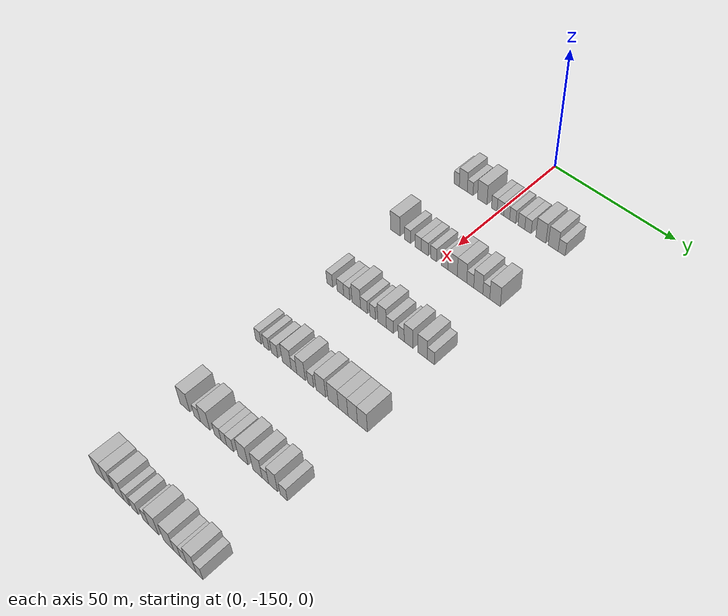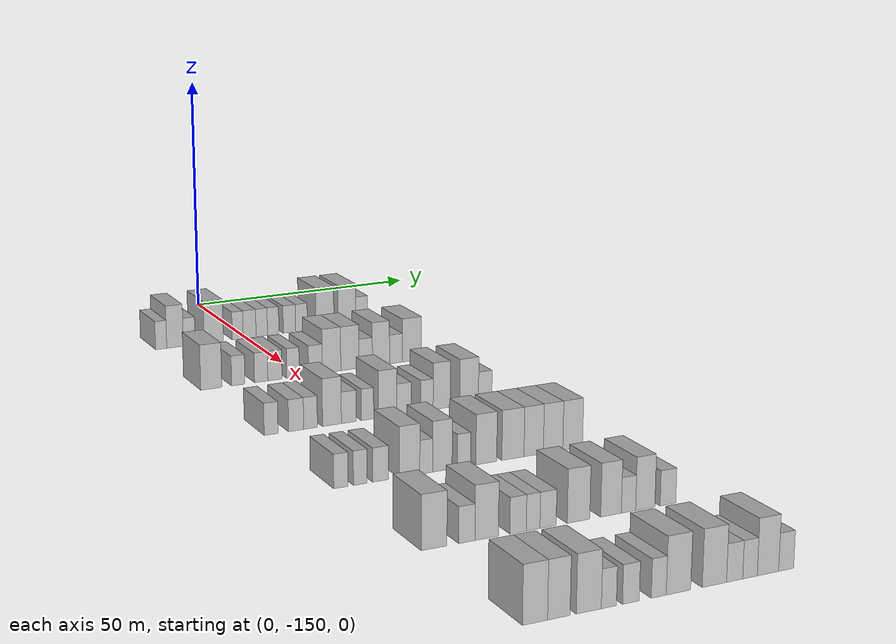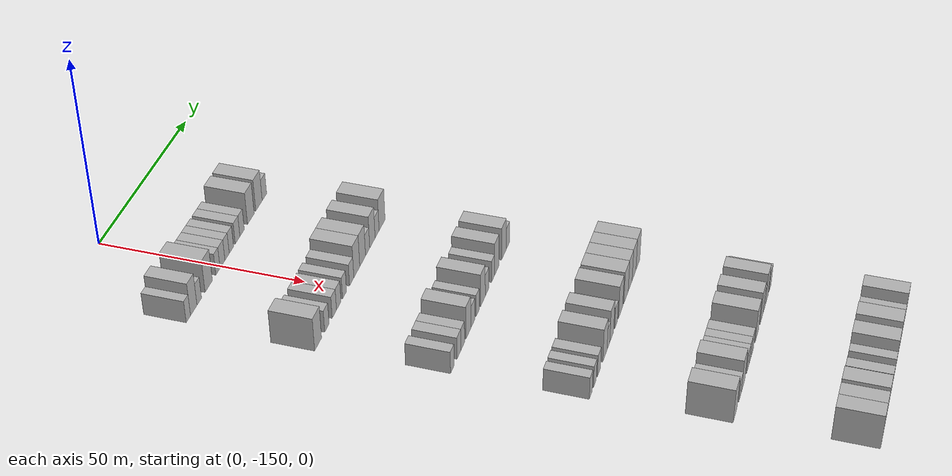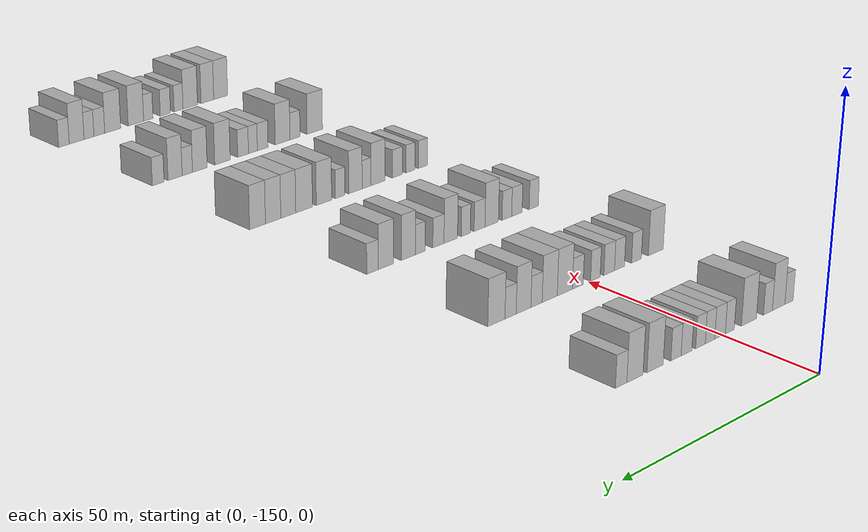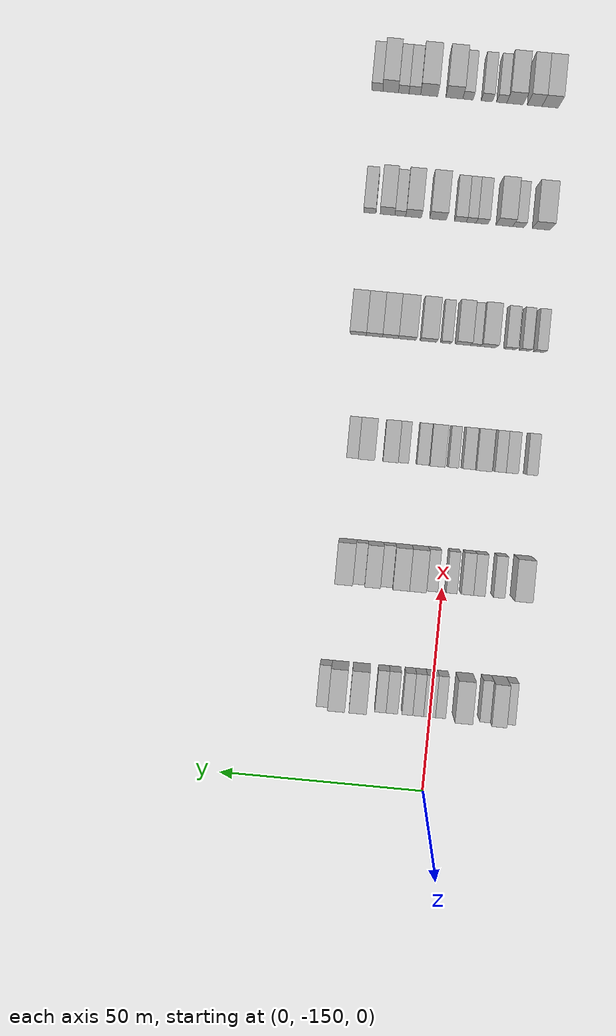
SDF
<sdf version="1.6">
 <world name="default">
  <model name="building_68">
   <static>1</static>
   <pose>25.0000 -168.8306 0 0.000000 0.000000 0.000000</pose>
   <link name="link">
    <pose>0 0 3.00 0 0 0</pose>
    <collision name="collision"><geometry><box><size>10.0000 2.4051 6.0000</size></box></geometry></collision>
    <visual name="visual">
     <cast_shadows>0</cast_shadows>
     <geometry><box><size>10.0000 2.4051 6.0000</size></box></geometry>
     <material>
      <script>
       <uri>model://HANNAS_wall/materials/scripts</uri>
       <uri>model://HANNAS_wall/materials/textures</uri>
       <name>vrc/HANNAS_wall</name>
      </script>
     </material>
    </visual>
   </link>
  </model>
  <model name="building_69">
   <static>1</static>
   <pose>25.0000 -165.8208 0 0.000000 0.000000 0.000000</pose>
   <link name="link">
    <pose>0 0 4.50 0 0 0</pose>
    <collision name="collision"><geometry><box><size>10.0000 3.6145 9.0000</size></box></geometry></collision>
    <visual name="visual">
     <cast_shadows>0</cast_shadows>
     <geometry><box><size>10.0000 3.6145 9.0000</size></box></geometry>
     <material>
      <script>
       <uri>model://HANNAS_wall/materials/scripts</uri>
       <uri>model://HANNAS_wall/materials/textures</uri>
       <name>vrc/HANNAS_wall</name>
      </script>
     </material>
    </visual>
   </link>
  </model>
  <model name="building_70">
   <static>1</static>
   <pose>25.0000 -162.7382 0 0.000000 0.000000 0.000000</pose>
   <link name="link">
    <pose>0 0 3.00 0 0 0</pose>
    <collision name="collision"><geometry><box><size>10.0000 2.5508 6.0000</size></box></geometry></collision>
    <visual name="visual">
     <cast_shadows>0</cast_shadows>
     <geometry><box><size>10.0000 2.5508 6.0000</size></box></geometry>
     <material>
      <script>
       <uri>model://HANNAS_wall/materials/scripts</uri>
       <uri>model://HANNAS_wall/materials/textures</uri>
       <name>vrc/HANNAS_wall</name>
      </script>
     </material>
    </visual>
   </link>
  </model>
  <model name="building_71">
   <static>1</static>
   <pose>25.0000 -157.3535 0 0.000000 0.000000 0.000000</pose>
   <link name="link">
    <pose>0 0 4.50 0 0 0</pose>
    <collision name="collision"><geometry><box><size>10.0000 4.2186 9.0000</size></box></geometry></collision>
    <visual name="visual">
     <cast_shadows>0</cast_shadows>
     <geometry><box><size>10.0000 4.2186 9.0000</size></box></geometry>
     <material>
      <script>
       <uri>model://HANNAS_wall/materials/scripts</uri>
       <uri>model://HANNAS_wall/materials/textures</uri>
       <name>vrc/HANNAS_wall</name>
      </script>
     </material>
    </visual>
   </link>
  </model>
  <model name="building_72">
   <static>1</static>
   <pose>25.0000 -152.0124 0 0.000000 0.000000 0.000000</pose>
   <link name="link">
    <pose>0 0 3.00 0 0 0</pose>
    <collision name="collision"><geometry><box><size>10.0000 2.4635 6.0000</size></box></geometry></collision>
    <visual name="visual">
     <cast_shadows>0</cast_shadows>
     <geometry><box><size>10.0000 2.4635 6.0000</size></box></geometry>
     <material>
      <script>
       <uri>model://HANNAS_wall/materials/scripts</uri>
       <uri>model://HANNAS_wall/materials/textures</uri>
       <name>vrc/HANNAS_wall</name>
      </script>
     </material>
    </visual>
   </link>
  </model>
  <model name="building_73">
   <static>1</static>
   <pose>25.0000 -149.3397 0 0.000000 0.000000 0.000000</pose>
   <link name="link">
    <pose>0 0 3.00 0 0 0</pose>
    <collision name="collision"><geometry><box><size>10.0000 2.8819 6.0000</size></box></geometry></collision>
    <visual name="visual">
     <cast_shadows>0</cast_shadows>
     <geometry><box><size>10.0000 2.8819 6.0000</size></box></geometry>
     <material>
      <script>
       <uri>model://HANNAS_wall/materials/scripts</uri>
       <uri>model://HANNAS_wall/materials/textures</uri>
       <name>vrc/HANNAS_wall</name>
      </script>
     </material>
    </visual>
   </link>
  </model>
  <model name="building_74">
   <static>1</static>
   <pose>25.0000 -146.6080 0 0.000000 0.000000 0.000000</pose>
   <link name="link">
    <pose>0 0 3.00 0 0 0</pose>
    <collision name="collision"><geometry><box><size>10.0000 2.5815 6.0000</size></box></geometry></collision>
    <visual name="visual">
     <cast_shadows>0</cast_shadows>
     <geometry><box><size>10.0000 2.5815 6.0000</size></box></geometry>
     <material>
      <script>
       <uri>model://HANNAS_wall/materials/scripts</uri>
       <uri>model://HANNAS_wall/materials/textures</uri>
       <name>vrc/HANNAS_wall</name>
      </script>
     </material>
    </visual>
   </link>
  </model>
  <model name="building_75">
   <static>1</static>
   <pose>25.0000 -144.0182 0 0.000000 0.000000 0.000000</pose>
   <link name="link">
    <pose>0 0 3.00 0 0 0</pose>
    <collision name="collision"><geometry><box><size>10.0000 2.5981 6.0000</size></box></geometry></collision>
    <visual name="visual">
     <cast_shadows>0</cast_shadows>
     <geometry><box><size>10.0000 2.5981 6.0000</size></box></geometry>
     <material>
      <script>
       <uri>model://HANNAS_wall/materials/scripts</uri>
       <uri>model://HANNAS_wall/materials/textures</uri>
       <name>vrc/HANNAS_wall</name>
      </script>
     </material>
    </visual>
   </link>
  </model>
  <model name="building_76">
   <static>1</static>
   <pose>25.0000 -140.2978 0 0.000000 0.000000 0.000000</pose>
   <link name="link">
    <pose>0 0 3.00 0 0 0</pose>
    <collision name="collision"><geometry><box><size>10.0000 2.8427 6.0000</size></box></geometry></collision>
    <visual name="visual">
     <cast_shadows>0</cast_shadows>
     <geometry><box><size>10.0000 2.8427 6.0000</size></box></geometry>
     <material>
      <script>
       <uri>model://HANNAS_wall/materials/scripts</uri>
       <uri>model://HANNAS_wall/materials/textures</uri>
       <name>vrc/HANNAS_wall</name>
      </script>
     </material>
    </visual>
   </link>
  </model>
  <model name="building_77">
   <static>1</static>
   <pose>25.0000 -137.5274 0 0.000000 0.000000 0.000000</pose>
   <link name="link">
    <pose>0 0 3.00 0 0 0</pose>
    <collision name="collision"><geometry><box><size>10.0000 2.6982 6.0000</size></box></geometry></collision>
    <visual name="visual">
     <cast_shadows>0</cast_shadows>
     <geometry><box><size>10.0000 2.6982 6.0000</size></box></geometry>
     <material>
      <script>
       <uri>model://HANNAS_wall/materials/scripts</uri>
       <uri>model://HANNAS_wall/materials/textures</uri>
       <name>vrc/HANNAS_wall</name>
      </script>
     </material>
    </visual>
   </link>
  </model>
  <model name="building_78">
   <static>1</static>
   <pose>25.0000 -132.0912 0 0.000000 0.000000 0.000000</pose>
   <link name="link">
    <pose>0 0 4.50 0 0 0</pose>
    <collision name="collision"><geometry><box><size>10.0000 4.1740 9.0000</size></box></geometry></collision>
    <visual name="visual">
     <cast_shadows>0</cast_shadows>
     <geometry><box><size>10.0000 4.1740 9.0000</size></box></geometry>
     <material>
      <script>
       <uri>model://HANNAS_wall/materials/scripts</uri>
       <uri>model://HANNAS_wall/materials/textures</uri>
       <name>vrc/HANNAS_wall</name>
      </script>
     </material>
    </visual>
   </link>
  </model>
  <model name="building_79">
   <static>1</static>
   <pose>25.0000 -126.9579 0 0.000000 0.000000 0.000000</pose>
   <link name="link">
    <pose>0 0 4.50 0 0 0</pose>
    <collision name="collision"><geometry><box><size>10.0000 4.0925 9.0000</size></box></geometry></collision>
    <visual name="visual">
     <cast_shadows>0</cast_shadows>
     <geometry><box><size>10.0000 4.0925 9.0000</size></box></geometry>
     <material>
      <script>
       <uri>model://HANNAS_wall/materials/scripts</uri>
       <uri>model://HANNAS_wall/materials/textures</uri>
       <name>vrc/HANNAS_wall</name>
      </script>
     </material>
    </visual>
   </link>
  </model>
  <model name="building_80">
   <static>1</static>
   <pose>25.0000 -123.4812 0 0.000000 0.000000 0.000000</pose>
   <link name="link">
    <pose>0 0 3.00 0 0 0</pose>
    <collision name="collision"><geometry><box><size>10.0000 2.8610 6.0000</size></box></geometry></collision>
    <visual name="visual">
     <cast_shadows>0</cast_shadows>
     <geometry><box><size>10.0000 2.8610 6.0000</size></box></geometry>
     <material>
      <script>
       <uri>model://HANNAS_wall/materials/scripts</uri>
       <uri>model://HANNAS_wall/materials/textures</uri>
       <name>vrc/HANNAS_wall</name>
      </script>
     </material>
    </visual>
   </link>
  </model>
  <model name="building_303">
   <static>1</static>
   <pose>55.0000 -168.8025 0 0.000000 0.000000 0.000000</pose>
   <link name="link">
    <pose>0 0 4.50 0 0 0</pose>
    <collision name="collision"><geometry><box><size>10.0000 4.2985 9.0000</size></box></geometry></collision>
    <visual name="visual">
     <cast_shadows>0</cast_shadows>
     <geometry><box><size>10.0000 4.2985 9.0000</size></box></geometry>
     <material>
      <script>
       <uri>model://HANNAS_wall/materials/scripts</uri>
       <uri>model://HANNAS_wall/materials/textures</uri>
       <name>vrc/HANNAS_wall</name>
      </script>
     </material>
    </visual>
   </link>
  </model>
  <model name="building_304">
   <static>1</static>
   <pose>55.0000 -163.2721 0 0.000000 0.000000 0.000000</pose>
   <link name="link">
    <pose>0 0 3.00 0 0 0</pose>
    <collision name="collision"><geometry><box><size>10.0000 2.7624 6.0000</size></box></geometry></collision>
    <visual name="visual">
     <cast_shadows>0</cast_shadows>
     <geometry><box><size>10.0000 2.7624 6.0000</size></box></geometry>
     <material>
      <script>
       <uri>model://HANNAS_wall/materials/scripts</uri>
       <uri>model://HANNAS_wall/materials/textures</uri>
       <name>vrc/HANNAS_wall</name>
      </script>
     </material>
    </visual>
   </link>
  </model>
  <model name="building_305">
   <static>1</static>
   <pose>55.0000 -158.5043 0 0.000000 0.000000 0.000000</pose>
   <link name="link">
    <pose>0 0 3.00 0 0 0</pose>
    <collision name="collision"><geometry><box><size>10.0000 2.7732 6.0000</size></box></geometry></collision>
    <visual name="visual">
     <cast_shadows>0</cast_shadows>
     <geometry><box><size>10.0000 2.7732 6.0000</size></box></geometry>
     <material>
      <script>
       <uri>model://HANNAS_wall/materials/scripts</uri>
       <uri>model://HANNAS_wall/materials/textures</uri>
       <name>vrc/HANNAS_wall</name>
      </script>
     </material>
    </visual>
   </link>
  </model>
  <model name="building_306">
   <static>1</static>
   <pose>55.0000 -155.6375 0 0.000000 0.000000 0.000000</pose>
   <link name="link">
    <pose>0 0 3.00 0 0 0</pose>
    <collision name="collision"><geometry><box><size>10.0000 2.9603 6.0000</size></box></geometry></collision>
    <visual name="visual">
     <cast_shadows>0</cast_shadows>
     <geometry><box><size>10.0000 2.9603 6.0000</size></box></geometry>
     <material>
      <script>
       <uri>model://HANNAS_wall/materials/scripts</uri>
       <uri>model://HANNAS_wall/materials/textures</uri>
       <name>vrc/HANNAS_wall</name>
      </script>
     </material>
    </visual>
   </link>
  </model>
  <model name="building_307">
   <static>1</static>
   <pose>55.0000 -151.8350 0 0.000000 0.000000 0.000000</pose>
   <link name="link">
    <pose>0 0 3.00 0 0 0</pose>
    <collision name="collision"><geometry><box><size>10.0000 2.6448 6.0000</size></box></geometry></collision>
    <visual name="visual">
     <cast_shadows>0</cast_shadows>
     <geometry><box><size>10.0000 2.6448 6.0000</size></box></geometry>
     <material>
      <script>
       <uri>model://HANNAS_wall/materials/scripts</uri>
       <uri>model://HANNAS_wall/materials/textures</uri>
       <name>vrc/HANNAS_wall</name>
      </script>
     </material>
    </visual>
   </link>
  </model>
  <model name="building_308">
   <static>1</static>
   <pose>55.0000 -147.0631 0 0.000000 0.000000 0.000000</pose>
   <link name="link">
    <pose>0 0 3.00 0 0 0</pose>
    <collision name="collision"><geometry><box><size>10.0000 2.8990 6.0000</size></box></geometry></collision>
    <visual name="visual">
     <cast_shadows>0</cast_shadows>
     <geometry><box><size>10.0000 2.8990 6.0000</size></box></geometry>
     <material>
      <script>
       <uri>model://HANNAS_wall/materials/scripts</uri>
       <uri>model://HANNAS_wall/materials/textures</uri>
       <name>vrc/HANNAS_wall</name>
      </script>
     </material>
    </visual>
   </link>
  </model>
  <model name="building_309">
   <static>1</static>
   <pose>55.0000 -143.6007 0 0.000000 0.000000 0.000000</pose>
   <link name="link">
    <pose>0 0 4.50 0 0 0</pose>
    <collision name="collision"><geometry><box><size>10.0000 4.0258 9.0000</size></box></geometry></collision>
    <visual name="visual">
     <cast_shadows>0</cast_shadows>
     <geometry><box><size>10.0000 4.0258 9.0000</size></box></geometry>
     <material>
      <script>
       <uri>model://HANNAS_wall/materials/scripts</uri>
       <uri>model://HANNAS_wall/materials/textures</uri>
       <name>vrc/HANNAS_wall</name>
      </script>
     </material>
    </visual>
   </link>
  </model>
  <model name="building_310">
   <static>1</static>
   <pose>55.0000 -139.6001 0 0.000000 0.000000 0.000000</pose>
   <link name="link">
    <pose>0 0 4.50 0 0 0</pose>
    <collision name="collision"><geometry><box><size>10.0000 3.9753 9.0000</size></box></geometry></collision>
    <visual name="visual">
     <cast_shadows>0</cast_shadows>
     <geometry><box><size>10.0000 3.9753 9.0000</size></box></geometry>
     <material>
      <script>
       <uri>model://HANNAS_wall/materials/scripts</uri>
       <uri>model://HANNAS_wall/materials/textures</uri>
       <name>vrc/HANNAS_wall</name>
      </script>
     </material>
    </visual>
   </link>
  </model>
  <model name="building_311">
   <static>1</static>
   <pose>55.0000 -136.1467 0 0.000000 0.000000 0.000000</pose>
   <link name="link">
    <pose>0 0 3.00 0 0 0</pose>
    <collision name="collision"><geometry><box><size>10.0000 2.9314 6.0000</size></box></geometry></collision>
    <visual name="visual">
     <cast_shadows>0</cast_shadows>
     <geometry><box><size>10.0000 2.9314 6.0000</size></box></geometry>
     <material>
      <script>
       <uri>model://HANNAS_wall/materials/scripts</uri>
       <uri>model://HANNAS_wall/materials/textures</uri>
       <name>vrc/HANNAS_wall</name>
      </script>
     </material>
    </visual>
   </link>
  </model>
  <model name="building_312">
   <static>1</static>
   <pose>55.0000 -132.7946 0 0.000000 0.000000 0.000000</pose>
   <link name="link">
    <pose>0 0 4.50 0 0 0</pose>
    <collision name="collision"><geometry><box><size>10.0000 3.7728 9.0000</size></box></geometry></collision>
    <visual name="visual">
     <cast_shadows>0</cast_shadows>
     <geometry><box><size>10.0000 3.7728 9.0000</size></box></geometry>
     <material>
      <script>
       <uri>model://HANNAS_wall/materials/scripts</uri>
       <uri>model://HANNAS_wall/materials/textures</uri>
       <name>vrc/HANNAS_wall</name>
      </script>
     </material>
    </visual>
   </link>
  </model>
  <model name="building_313">
   <static>1</static>
   <pose>55.0000 -129.4833 0 0.000000 0.000000 0.000000</pose>
   <link name="link">
    <pose>0 0 3.00 0 0 0</pose>
    <collision name="collision"><geometry><box><size>10.0000 2.8499 6.0000</size></box></geometry></collision>
    <visual name="visual">
     <cast_shadows>0</cast_shadows>
     <geometry><box><size>10.0000 2.8499 6.0000</size></box></geometry>
     <material>
      <script>
       <uri>model://HANNAS_wall/materials/scripts</uri>
       <uri>model://HANNAS_wall/materials/textures</uri>
       <name>vrc/HANNAS_wall</name>
      </script>
     </material>
    </visual>
   </link>
  </model>
  <model name="building_314">
   <static>1</static>
   <pose>55.0000 -125.9034 0 0.000000 0.000000 0.000000</pose>
   <link name="link">
    <pose>0 0 4.50 0 0 0</pose>
    <collision name="collision"><geometry><box><size>10.0000 4.3099 9.0000</size></box></geometry></collision>
    <visual name="visual">
     <cast_shadows>0</cast_shadows>
     <geometry><box><size>10.0000 4.3099 9.0000</size></box></geometry>
     <material>
      <script>
       <uri>model://HANNAS_wall/materials/scripts</uri>
       <uri>model://HANNAS_wall/materials/textures</uri>
       <name>vrc/HANNAS_wall</name>
      </script>
     </material>
    </visual>
   </link>
  </model>
  <model name="building_519">
   <static>1</static>
   <pose>85.0000 -168.3787 0 0.000000 0.000000 0.000000</pose>
   <link name="link">
    <pose>0 0 3.00 0 0 0</pose>
    <collision name="collision"><geometry><box><size>10.0000 2.6709 6.0000</size></box></geometry></collision>
    <visual name="visual">
     <cast_shadows>0</cast_shadows>
     <geometry><box><size>10.0000 2.6709 6.0000</size></box></geometry>
     <material>
      <script>
       <uri>model://HANNAS_wall/materials/scripts</uri>
       <uri>model://HANNAS_wall/materials/textures</uri>
       <name>vrc/HANNAS_wall</name>
      </script>
     </material>
    </visual>
   </link>
  </model>
  <model name="building_520">
   <static>1</static>
   <pose>85.0000 -163.5706 0 0.000000 0.000000 0.000000</pose>
   <link name="link">
    <pose>0 0 3.00 0 0 0</pose>
    <collision name="collision"><geometry><box><size>10.0000 2.9453 6.0000</size></box></geometry></collision>
    <visual name="visual">
     <cast_shadows>0</cast_shadows>
     <geometry><box><size>10.0000 2.9453 6.0000</size></box></geometry>
     <material>
      <script>
       <uri>model://HANNAS_wall/materials/scripts</uri>
       <uri>model://HANNAS_wall/materials/textures</uri>
       <name>vrc/HANNAS_wall</name>
      </script>
     </material>
    </visual>
   </link>
  </model>
  <model name="building_521">
   <static>1</static>
   <pose>85.0000 -160.7535 0 0.000000 0.000000 0.000000</pose>
   <link name="link">
    <pose>0 0 3.00 0 0 0</pose>
    <collision name="collision"><geometry><box><size>10.0000 2.6888 6.0000</size></box></geometry></collision>
    <visual name="visual">
     <cast_shadows>0</cast_shadows>
     <geometry><box><size>10.0000 2.6888 6.0000</size></box></geometry>
     <material>
      <script>
       <uri>model://HANNAS_wall/materials/scripts</uri>
       <uri>model://HANNAS_wall/materials/textures</uri>
       <name>vrc/HANNAS_wall</name>
      </script>
     </material>
    </visual>
   </link>
  </model>
  <model name="building_522">
   <static>1</static>
   <pose>85.0000 -156.5390 0 0.000000 0.000000 0.000000</pose>
   <link name="link">
    <pose>0 0 4.50 0 0 0</pose>
    <collision name="collision"><geometry><box><size>10.0000 3.7402 9.0000</size></box></geometry></collision>
    <visual name="visual">
     <cast_shadows>0</cast_shadows>
     <geometry><box><size>10.0000 3.7402 9.0000</size></box></geometry>
     <material>
      <script>
       <uri>model://HANNAS_wall/materials/scripts</uri>
       <uri>model://HANNAS_wall/materials/textures</uri>
       <name>vrc/HANNAS_wall</name>
      </script>
     </material>
    </visual>
   </link>
  </model>
  <model name="building_523">
   <static>1</static>
   <pose>85.0000 -153.1723 0 0.000000 0.000000 0.000000</pose>
   <link name="link">
    <pose>0 0 3.00 0 0 0</pose>
    <collision name="collision"><geometry><box><size>10.0000 2.9931 6.0000</size></box></geometry></collision>
    <visual name="visual">
     <cast_shadows>0</cast_shadows>
     <geometry><box><size>10.0000 2.9931 6.0000</size></box></geometry>
     <material>
      <script>
       <uri>model://HANNAS_wall/materials/scripts</uri>
       <uri>model://HANNAS_wall/materials/textures</uri>
       <name>vrc/HANNAS_wall</name>
      </script>
     </material>
    </visual>
   </link>
  </model>
  <model name="building_524">
   <static>1</static>
   <pose>85.0000 -149.4443 0 0.000000 0.000000 0.000000</pose>
   <link name="link">
    <pose>0 0 3.00 0 0 0</pose>
    <collision name="collision"><geometry><box><size>10.0000 2.4628 6.0000</size></box></geometry></collision>
    <visual name="visual">
     <cast_shadows>0</cast_shadows>
     <geometry><box><size>10.0000 2.4628 6.0000</size></box></geometry>
     <material>
      <script>
       <uri>model://HANNAS_wall/materials/scripts</uri>
       <uri>model://HANNAS_wall/materials/textures</uri>
       <name>vrc/HANNAS_wall</name>
      </script>
     </material>
    </visual>
   </link>
  </model>
  <model name="building_525">
   <static>1</static>
   <pose>85.0000 -145.3995 0 0.000000 0.000000 0.000000</pose>
   <link name="link">
    <pose>0 0 4.50 0 0 0</pose>
    <collision name="collision"><geometry><box><size>10.0000 3.6269 9.0000</size></box></geometry></collision>
    <visual name="visual">
     <cast_shadows>0</cast_shadows>
     <geometry><box><size>10.0000 3.6269 9.0000</size></box></geometry>
     <material>
      <script>
       <uri>model://HANNAS_wall/materials/scripts</uri>
       <uri>model://HANNAS_wall/materials/textures</uri>
       <name>vrc/HANNAS_wall</name>
      </script>
     </material>
    </visual>
   </link>
  </model>
  <model name="building_526">
   <static>1</static>
   <pose>85.0000 -142.0991 0 0.000000 0.000000 0.000000</pose>
   <link name="link">
    <pose>0 0 3.00 0 0 0</pose>
    <collision name="collision"><geometry><box><size>10.0000 2.9740 6.0000</size></box></geometry></collision>
    <visual name="visual">
     <cast_shadows>0</cast_shadows>
     <geometry><box><size>10.0000 2.9740 6.0000</size></box></geometry>
     <material>
      <script>
       <uri>model://HANNAS_wall/materials/scripts</uri>
       <uri>model://HANNAS_wall/materials/textures</uri>
       <name>vrc/HANNAS_wall</name>
      </script>
     </material>
    </visual>
   </link>
  </model>
  <model name="building_527">
   <static>1</static>
   <pose>85.0000 -137.3307 0 0.000000 0.000000 0.000000</pose>
   <link name="link">
    <pose>0 0 3.00 0 0 0</pose>
    <collision name="collision"><geometry><box><size>10.0000 2.5627 6.0000</size></box></geometry></collision>
    <visual name="visual">
     <cast_shadows>0</cast_shadows>
     <geometry><box><size>10.0000 2.5627 6.0000</size></box></geometry>
     <material>
      <script>
       <uri>model://HANNAS_wall/materials/scripts</uri>
       <uri>model://HANNAS_wall/materials/textures</uri>
       <name>vrc/HANNAS_wall</name>
      </script>
     </material>
    </visual>
   </link>
  </model>
  <model name="building_528">
   <static>1</static>
   <pose>85.0000 -134.2422 0 0.000000 0.000000 0.000000</pose>
   <link name="link">
    <pose>0 0 4.50 0 0 0</pose>
    <collision name="collision"><geometry><box><size>10.0000 3.6145 9.0000</size></box></geometry></collision>
    <visual name="visual">
     <cast_shadows>0</cast_shadows>
     <geometry><box><size>10.0000 3.6145 9.0000</size></box></geometry>
     <material>
      <script>
       <uri>model://HANNAS_wall/materials/scripts</uri>
       <uri>model://HANNAS_wall/materials/textures</uri>
       <name>vrc/HANNAS_wall</name>
      </script>
     </material>
    </visual>
   </link>
  </model>
  <model name="building_529">
   <static>1</static>
   <pose>85.0000 -128.4750 0 0.000000 0.000000 0.000000</pose>
   <link name="link">
    <pose>0 0 4.50 0 0 0</pose>
    <collision name="collision"><geometry><box><size>10.0000 3.9199 9.0000</size></box></geometry></collision>
    <visual name="visual">
     <cast_shadows>0</cast_shadows>
     <geometry><box><size>10.0000 3.9199 9.0000</size></box></geometry>
     <material>
      <script>
       <uri>model://HANNAS_wall/materials/scripts</uri>
       <uri>model://HANNAS_wall/materials/textures</uri>
       <name>vrc/HANNAS_wall</name>
      </script>
     </material>
    </visual>
   </link>
  </model>
  <model name="building_530">
   <static>1</static>
   <pose>85.0000 -125.0925 0 0.000000 0.000000 0.000000</pose>
   <link name="link">
    <pose>0 0 3.00 0 0 0</pose>
    <collision name="collision"><geometry><box><size>10.0000 2.8451 6.0000</size></box></geometry></collision>
    <visual name="visual">
     <cast_shadows>0</cast_shadows>
     <geometry><box><size>10.0000 2.8451 6.0000</size></box></geometry>
     <material>
      <script>
       <uri>model://HANNAS_wall/materials/scripts</uri>
       <uri>model://HANNAS_wall/materials/textures</uri>
       <name>vrc/HANNAS_wall</name>
      </script>
     </material>
    </visual>
   </link>
  </model>
  <model name="building_752">
   <static>1</static>
   <pose>115.0000 -167.9807 0 0.000000 0.000000 0.000000</pose>
   <link name="link">
    <pose>0 0 3.00 0 0 0</pose>
    <collision name="collision"><geometry><box><size>10.0000 2.5508 6.0000</size></box></geometry></collision>
    <visual name="visual">
     <cast_shadows>0</cast_shadows>
     <geometry><box><size>10.0000 2.5508 6.0000</size></box></geometry>
     <material>
      <script>
       <uri>model://HANNAS_wall/materials/scripts</uri>
       <uri>model://HANNAS_wall/materials/textures</uri>
       <name>vrc/HANNAS_wall</name>
      </script>
     </material>
    </visual>
   </link>
  </model>
  <model name="building_753">
   <static>1</static>
   <pose>115.0000 -164.4533 0 0.000000 0.000000 0.000000</pose>
   <link name="link">
    <pose>0 0 3.00 0 0 0</pose>
    <collision name="collision"><geometry><box><size>10.0000 2.5039 6.0000</size></box></geometry></collision>
    <visual name="visual">
     <cast_shadows>0</cast_shadows>
     <geometry><box><size>10.0000 2.5039 6.0000</size></box></geometry>
     <material>
      <script>
       <uri>model://HANNAS_wall/materials/scripts</uri>
       <uri>model://HANNAS_wall/materials/textures</uri>
       <name>vrc/HANNAS_wall</name>
      </script>
     </material>
    </visual>
   </link>
  </model>
  <model name="building_754">
   <static>1</static>
   <pose>115.0000 -160.7635 0 0.000000 0.000000 0.000000</pose>
   <link name="link">
    <pose>0 0 3.00 0 0 0</pose>
    <collision name="collision"><geometry><box><size>10.0000 2.8758 6.0000</size></box></geometry></collision>
    <visual name="visual">
     <cast_shadows>0</cast_shadows>
     <geometry><box><size>10.0000 2.8758 6.0000</size></box></geometry>
     <material>
      <script>
       <uri>model://HANNAS_wall/materials/scripts</uri>
       <uri>model://HANNAS_wall/materials/textures</uri>
       <name>vrc/HANNAS_wall</name>
      </script>
     </material>
    </visual>
   </link>
  </model>
  <model name="building_755">
   <static>1</static>
   <pose>115.0000 -155.3990 0 0.000000 0.000000 0.000000</pose>
   <link name="link">
    <pose>0 0 4.50 0 0 0</pose>
    <collision name="collision"><geometry><box><size>10.0000 3.8533 9.0000</size></box></geometry></collision>
    <visual name="visual">
     <cast_shadows>0</cast_shadows>
     <geometry><box><size>10.0000 3.8533 9.0000</size></box></geometry>
     <material>
      <script>
       <uri>model://HANNAS_wall/materials/scripts</uri>
       <uri>model://HANNAS_wall/materials/textures</uri>
       <name>vrc/HANNAS_wall</name>
      </script>
     </material>
    </visual>
   </link>
  </model>
  <model name="building_756">
   <static>1</static>
   <pose>115.0000 -152.2515 0 0.000000 0.000000 0.000000</pose>
   <link name="link">
    <pose>0 0 3.00 0 0 0</pose>
    <collision name="collision"><geometry><box><size>10.0000 2.4416 6.0000</size></box></geometry></collision>
    <visual name="visual">
     <cast_shadows>0</cast_shadows>
     <geometry><box><size>10.0000 2.4416 6.0000</size></box></geometry>
     <material>
      <script>
       <uri>model://HANNAS_wall/materials/scripts</uri>
       <uri>model://HANNAS_wall/materials/textures</uri>
       <name>vrc/HANNAS_wall</name>
      </script>
     </material>
    </visual>
   </link>
  </model>
  <model name="building_757">
   <static>1</static>
   <pose>115.0000 -149.2053 0 0.000000 0.000000 0.000000</pose>
   <link name="link">
    <pose>0 0 4.50 0 0 0</pose>
    <collision name="collision"><geometry><box><size>10.0000 3.6507 9.0000</size></box></geometry></collision>
    <visual name="visual">
     <cast_shadows>0</cast_shadows>
     <geometry><box><size>10.0000 3.6507 9.0000</size></box></geometry>
     <material>
      <script>
       <uri>model://HANNAS_wall/materials/scripts</uri>
       <uri>model://HANNAS_wall/materials/textures</uri>
       <name>vrc/HANNAS_wall</name>
      </script>
     </material>
    </visual>
   </link>
  </model>
  <model name="building_758">
   <static>1</static>
   <pose>115.0000 -145.0972 0 0.000000 0.000000 0.000000</pose>
   <link name="link">
    <pose>0 0 3.00 0 0 0</pose>
    <collision name="collision"><geometry><box><size>10.0000 2.5655 6.0000</size></box></geometry></collision>
    <visual name="visual">
     <cast_shadows>0</cast_shadows>
     <geometry><box><size>10.0000 2.5655 6.0000</size></box></geometry>
     <material>
      <script>
       <uri>model://HANNAS_wall/materials/scripts</uri>
       <uri>model://HANNAS_wall/materials/textures</uri>
       <name>vrc/HANNAS_wall</name>
      </script>
     </material>
    </visual>
   </link>
  </model>
  <model name="building_759">
   <static>1</static>
   <pose>115.0000 -140.7912 0 0.000000 0.000000 0.000000</pose>
   <link name="link">
    <pose>0 0 4.50 0 0 0</pose>
    <collision name="collision"><geometry><box><size>10.0000 4.0465 9.0000</size></box></geometry></collision>
    <visual name="visual">
     <cast_shadows>0</cast_shadows>
     <geometry><box><size>10.0000 4.0465 9.0000</size></box></geometry>
     <material>
      <script>
       <uri>model://HANNAS_wall/materials/scripts</uri>
       <uri>model://HANNAS_wall/materials/textures</uri>
       <name>vrc/HANNAS_wall</name>
      </script>
     </material>
    </visual>
   </link>
  </model>
  <model name="building_760">
   <static>1</static>
   <pose>115.0000 -135.5955 0 0.000000 0.000000 0.000000</pose>
   <link name="link">
    <pose>0 0 4.50 0 0 0</pose>
    <collision name="collision"><geometry><box><size>10.0000 4.3448 9.0000</size></box></geometry></collision>
    <visual name="visual">
     <cast_shadows>0</cast_shadows>
     <geometry><box><size>10.0000 4.3448 9.0000</size></box></geometry>
     <material>
      <script>
       <uri>model://HANNAS_wall/materials/scripts</uri>
       <uri>model://HANNAS_wall/materials/textures</uri>
       <name>vrc/HANNAS_wall</name>
      </script>
     </material>
    </visual>
   </link>
  </model>
  <model name="building_761">
   <static>1</static>
   <pose>115.0000 -131.4975 0 0.000000 0.000000 0.000000</pose>
   <link name="link">
    <pose>0 0 4.50 0 0 0</pose>
    <collision name="collision"><geometry><box><size>10.0000 3.8512 9.0000</size></box></geometry></collision>
    <visual name="visual">
     <cast_shadows>0</cast_shadows>
     <geometry><box><size>10.0000 3.8512 9.0000</size></box></geometry>
     <material>
      <script>
       <uri>model://HANNAS_wall/materials/scripts</uri>
       <uri>model://HANNAS_wall/materials/textures</uri>
       <name>vrc/HANNAS_wall</name>
      </script>
     </material>
    </visual>
   </link>
  </model>
  <model name="building_762">
   <static>1</static>
   <pose>115.0000 -127.6293 0 0.000000 0.000000 0.000000</pose>
   <link name="link">
    <pose>0 0 4.50 0 0 0</pose>
    <collision name="collision"><geometry><box><size>10.0000 3.8850 9.0000</size></box></geometry></collision>
    <visual name="visual">
     <cast_shadows>0</cast_shadows>
     <geometry><box><size>10.0000 3.8850 9.0000</size></box></geometry>
     <material>
      <script>
       <uri>model://HANNAS_wall/materials/scripts</uri>
       <uri>model://HANNAS_wall/materials/textures</uri>
       <name>vrc/HANNAS_wall</name>
      </script>
     </material>
    </visual>
   </link>
  </model>
  <model name="building_763">
   <static>1</static>
   <pose>115.0000 -123.6923 0 0.000000 0.000000 0.000000</pose>
   <link name="link">
    <pose>0 0 4.50 0 0 0</pose>
    <collision name="collision"><geometry><box><size>10.0000 3.9892 9.0000</size></box></geometry></collision>
    <visual name="visual">
     <cast_shadows>0</cast_shadows>
     <geometry><box><size>10.0000 3.9892 9.0000</size></box></geometry>
     <material>
      <script>
       <uri>model://HANNAS_wall/materials/scripts</uri>
       <uri>model://HANNAS_wall/materials/textures</uri>
       <name>vrc/HANNAS_wall</name>
      </script>
     </material>
    </visual>
   </link>
  </model>
  <model name="building_980">
   <static>1</static>
   <pose>145.0000 -165.7305 0 0.000000 0.000000 0.000000</pose>
   <link name="link">
    <pose>0 0 4.50 0 0 0</pose>
    <collision name="collision"><geometry><box><size>10.0000 4.3832 9.0000</size></box></geometry></collision>
    <visual name="visual">
     <cast_shadows>0</cast_shadows>
     <geometry><box><size>10.0000 4.3832 9.0000</size></box></geometry>
     <material>
      <script>
       <uri>model://HANNAS_wall/materials/scripts</uri>
       <uri>model://HANNAS_wall/materials/textures</uri>
       <name>vrc/HANNAS_wall</name>
      </script>
     </material>
    </visual>
   </link>
  </model>
  <model name="building_981">
   <static>1</static>
   <pose>145.0000 -160.1281 0 0.000000 0.000000 0.000000</pose>
   <link name="link">
    <pose>0 0 3.00 0 0 0</pose>
    <collision name="collision"><geometry><box><size>10.0000 2.8216 6.0000</size></box></geometry></collision>
    <visual name="visual">
     <cast_shadows>0</cast_shadows>
     <geometry><box><size>10.0000 2.8216 6.0000</size></box></geometry>
     <material>
      <script>
       <uri>model://HANNAS_wall/materials/scripts</uri>
       <uri>model://HANNAS_wall/materials/textures</uri>
       <name>vrc/HANNAS_wall</name>
      </script>
     </material>
    </visual>
   </link>
  </model>
  <model name="building_982">
   <static>1</static>
   <pose>145.0000 -156.6662 0 0.000000 0.000000 0.000000</pose>
   <link name="link">
    <pose>0 0 4.50 0 0 0</pose>
    <collision name="collision"><geometry><box><size>10.0000 4.1022 9.0000</size></box></geometry></collision>
    <visual name="visual">
     <cast_shadows>0</cast_shadows>
     <geometry><box><size>10.0000 4.1022 9.0000</size></box></geometry>
     <material>
      <script>
       <uri>model://HANNAS_wall/materials/scripts</uri>
       <uri>model://HANNAS_wall/materials/textures</uri>
       <name>vrc/HANNAS_wall</name>
      </script>
     </material>
    </visual>
   </link>
  </model>
  <model name="building_983">
   <static>1</static>
   <pose>145.0000 -151.1613 0 0.000000 0.000000 0.000000</pose>
   <link name="link">
    <pose>0 0 3.00 0 0 0</pose>
    <collision name="collision"><geometry><box><size>10.0000 2.9075 6.0000</size></box></geometry></collision>
    <visual name="visual">
     <cast_shadows>0</cast_shadows>
     <geometry><box><size>10.0000 2.9075 6.0000</size></box></geometry>
     <material>
      <script>
       <uri>model://HANNAS_wall/materials/scripts</uri>
       <uri>model://HANNAS_wall/materials/textures</uri>
       <name>vrc/HANNAS_wall</name>
      </script>
     </material>
    </visual>
   </link>
  </model>
  <model name="building_984">
   <static>1</static>
   <pose>145.0000 -148.4924 0 0.000000 0.000000 0.000000</pose>
   <link name="link">
    <pose>0 0 3.00 0 0 0</pose>
    <collision name="collision"><geometry><box><size>10.0000 2.4302 6.0000</size></box></geometry></collision>
    <visual name="visual">
     <cast_shadows>0</cast_shadows>
     <geometry><box><size>10.0000 2.4302 6.0000</size></box></geometry>
     <material>
      <script>
       <uri>model://HANNAS_wall/materials/scripts</uri>
       <uri>model://HANNAS_wall/materials/textures</uri>
       <name>vrc/HANNAS_wall</name>
      </script>
     </material>
    </visual>
   </link>
  </model>
  <model name="building_985">
   <static>1</static>
   <pose>145.0000 -145.8216 0 0.000000 0.000000 0.000000</pose>
   <link name="link">
    <pose>0 0 3.00 0 0 0</pose>
    <collision name="collision"><geometry><box><size>10.0000 2.9115 6.0000</size></box></geometry></collision>
    <visual name="visual">
     <cast_shadows>0</cast_shadows>
     <geometry><box><size>10.0000 2.9115 6.0000</size></box></geometry>
     <material>
      <script>
       <uri>model://HANNAS_wall/materials/scripts</uri>
       <uri>model://HANNAS_wall/materials/textures</uri>
       <name>vrc/HANNAS_wall</name>
      </script>
     </material>
    </visual>
   </link>
  </model>
  <model name="building_986">
   <static>1</static>
   <pose>145.0000 -140.3120 0 0.000000 0.000000 0.000000</pose>
   <link name="link">
    <pose>0 0 4.50 0 0 0</pose>
    <collision name="collision"><geometry><box><size>10.0000 4.1078 9.0000</size></box></geometry></collision>
    <visual name="visual">
     <cast_shadows>0</cast_shadows>
     <geometry><box><size>10.0000 4.1078 9.0000</size></box></geometry>
     <material>
      <script>
       <uri>model://HANNAS_wall/materials/scripts</uri>
       <uri>model://HANNAS_wall/materials/textures</uri>
       <name>vrc/HANNAS_wall</name>
      </script>
     </material>
    </visual>
   </link>
  </model>
  <model name="building_987">
   <static>1</static>
   <pose>145.0000 -134.3411 0 0.000000 0.000000 0.000000</pose>
   <link name="link">
    <pose>0 0 4.50 0 0 0</pose>
    <collision name="collision"><geometry><box><size>10.0000 3.8340 9.0000</size></box></geometry></collision>
    <visual name="visual">
     <cast_shadows>0</cast_shadows>
     <geometry><box><size>10.0000 3.8340 9.0000</size></box></geometry>
     <material>
      <script>
       <uri>model://HANNAS_wall/materials/scripts</uri>
       <uri>model://HANNAS_wall/materials/textures</uri>
       <name>vrc/HANNAS_wall</name>
      </script>
     </material>
    </visual>
   </link>
  </model>
  <model name="building_988">
   <static>1</static>
   <pose>145.0000 -131.0820 0 0.000000 0.000000 0.000000</pose>
   <link name="link">
    <pose>0 0 3.00 0 0 0</pose>
    <collision name="collision"><geometry><box><size>10.0000 2.6842 6.0000</size></box></geometry></collision>
    <visual name="visual">
     <cast_shadows>0</cast_shadows>
     <geometry><box><size>10.0000 2.6842 6.0000</size></box></geometry>
     <material>
      <script>
       <uri>model://HANNAS_wall/materials/scripts</uri>
       <uri>model://HANNAS_wall/materials/textures</uri>
       <name>vrc/HANNAS_wall</name>
      </script>
     </material>
    </visual>
   </link>
  </model>
  <model name="building_989">
   <static>1</static>
   <pose>145.0000 -127.9302 0 0.000000 0.000000 0.000000</pose>
   <link name="link">
    <pose>0 0 4.50 0 0 0</pose>
    <collision name="collision"><geometry><box><size>10.0000 3.6194 9.0000</size></box></geometry></collision>
    <visual name="visual">
     <cast_shadows>0</cast_shadows>
     <geometry><box><size>10.0000 3.6194 9.0000</size></box></geometry>
     <material>
      <script>
       <uri>model://HANNAS_wall/materials/scripts</uri>
       <uri>model://HANNAS_wall/materials/textures</uri>
       <name>vrc/HANNAS_wall</name>
      </script>
     </material>
    </visual>
   </link>
  </model>
  <model name="building_990">
   <static>1</static>
   <pose>145.0000 -123.6277 0 0.000000 0.000000 0.000000</pose>
   <link name="link">
    <pose>0 0 3.00 0 0 0</pose>
    <collision name="collision"><geometry><box><size>10.0000 2.9857 6.0000</size></box></geometry></collision>
    <visual name="visual">
     <cast_shadows>0</cast_shadows>
     <geometry><box><size>10.0000 2.9857 6.0000</size></box></geometry>
     <material>
      <script>
       <uri>model://HANNAS_wall/materials/scripts</uri>
       <uri>model://HANNAS_wall/materials/textures</uri>
       <name>vrc/HANNAS_wall</name>
      </script>
     </material>
    </visual>
   </link>
  </model>
  <model name="building_1206">
   <static>1</static>
   <pose>175.0000 -165.0819 0 0.000000 0.000000 0.000000</pose>
   <link name="link">
    <pose>0 0 4.50 0 0 0</pose>
    <collision name="collision"><geometry><box><size>10.0000 3.9853 9.0000</size></box></geometry></collision>
    <visual name="visual">
     <cast_shadows>0</cast_shadows>
     <geometry><box><size>10.0000 3.9853 9.0000</size></box></geometry>
     <material>
      <script>
       <uri>model://HANNAS_wall/materials/scripts</uri>
       <uri>model://HANNAS_wall/materials/textures</uri>
       <name>vrc/HANNAS_wall</name>
      </script>
     </material>
    </visual>
   </link>
  </model>
  <model name="building_1207">
   <static>1</static>
   <pose>175.0000 -161.2840 0 0.000000 0.000000 0.000000</pose>
   <link name="link">
    <pose>0 0 4.50 0 0 0</pose>
    <collision name="collision"><geometry><box><size>10.0000 3.6105 9.0000</size></box></geometry></collision>
    <visual name="visual">
     <cast_shadows>0</cast_shadows>
     <geometry><box><size>10.0000 3.6105 9.0000</size></box></geometry>
     <material>
      <script>
       <uri>model://HANNAS_wall/materials/scripts</uri>
       <uri>model://HANNAS_wall/materials/textures</uri>
       <name>vrc/HANNAS_wall</name>
      </script>
     </material>
    </visual>
   </link>
  </model>
  <model name="building_1208">
   <static>1</static>
   <pose>175.0000 -156.4458 0 0.000000 0.000000 0.000000</pose>
   <link name="link">
    <pose>0 0 4.50 0 0 0</pose>
    <collision name="collision"><geometry><box><size>10.0000 4.0659 9.0000</size></box></geometry></collision>
    <visual name="visual">
     <cast_shadows>0</cast_shadows>
     <geometry><box><size>10.0000 4.0659 9.0000</size></box></geometry>
     <material>
      <script>
       <uri>model://HANNAS_wall/materials/scripts</uri>
       <uri>model://HANNAS_wall/materials/textures</uri>
       <name>vrc/HANNAS_wall</name>
      </script>
     </material>
    </visual>
   </link>
  </model>
  <model name="building_1209">
   <static>1</static>
   <pose>175.0000 -153.1683 0 0.000000 0.000000 0.000000</pose>
   <link name="link">
    <pose>0 0 3.00 0 0 0</pose>
    <collision name="collision"><geometry><box><size>10.0000 2.4892 6.0000</size></box></geometry></collision>
    <visual name="visual">
     <cast_shadows>0</cast_shadows>
     <geometry><box><size>10.0000 2.4892 6.0000</size></box></geometry>
     <material>
      <script>
       <uri>model://HANNAS_wall/materials/scripts</uri>
       <uri>model://HANNAS_wall/materials/textures</uri>
       <name>vrc/HANNAS_wall</name>
      </script>
     </material>
    </visual>
   </link>
  </model>
  <model name="building_1210">
   <static>1</static>
   <pose>175.0000 -149.5278 0 0.000000 0.000000 0.000000</pose>
   <link name="link">
    <pose>0 0 3.00 0 0 0</pose>
    <collision name="collision"><geometry><box><size>10.0000 2.7917 6.0000</size></box></geometry></collision>
    <visual name="visual">
     <cast_shadows>0</cast_shadows>
     <geometry><box><size>10.0000 2.7917 6.0000</size></box></geometry>
     <material>
      <script>
       <uri>model://HANNAS_wall/materials/scripts</uri>
       <uri>model://HANNAS_wall/materials/textures</uri>
       <name>vrc/HANNAS_wall</name>
      </script>
     </material>
    </visual>
   </link>
  </model>
  <model name="building_1211">
   <static>1</static>
   <pose>175.0000 -144.8602 0 0.000000 0.000000 0.000000</pose>
   <link name="link">
    <pose>0 0 3.00 0 0 0</pose>
    <collision name="collision"><geometry><box><size>10.0000 2.5437 6.0000</size></box></geometry></collision>
    <visual name="visual">
     <cast_shadows>0</cast_shadows>
     <geometry><box><size>10.0000 2.5437 6.0000</size></box></geometry>
     <material>
      <script>
       <uri>model://HANNAS_wall/materials/scripts</uri>
       <uri>model://HANNAS_wall/materials/textures</uri>
       <name>vrc/HANNAS_wall</name>
      </script>
     </material>
    </visual>
   </link>
  </model>
  <model name="building_1212">
   <static>1</static>
   <pose>175.0000 -141.5085 0 0.000000 0.000000 0.000000</pose>
   <link name="link">
    <pose>0 0 4.50 0 0 0</pose>
    <collision name="collision"><geometry><box><size>10.0000 4.1597 9.0000</size></box></geometry></collision>
    <visual name="visual">
     <cast_shadows>0</cast_shadows>
     <geometry><box><size>10.0000 4.1597 9.0000</size></box></geometry>
     <material>
      <script>
       <uri>model://HANNAS_wall/materials/scripts</uri>
       <uri>model://HANNAS_wall/materials/textures</uri>
       <name>vrc/HANNAS_wall</name>
      </script>
     </material>
    </visual>
   </link>
  </model>
  <model name="building_1213">
   <static>1</static>
   <pose>175.0000 -135.3206 0 0.000000 0.000000 0.000000</pose>
   <link name="link">
    <pose>0 0 4.50 0 0 0</pose>
    <collision name="collision"><geometry><box><size>10.0000 4.2161 9.0000</size></box></geometry></collision>
    <visual name="visual">
     <cast_shadows>0</cast_shadows>
     <geometry><box><size>10.0000 4.2161 9.0000</size></box></geometry>
     <material>
      <script>
       <uri>model://HANNAS_wall/materials/scripts</uri>
       <uri>model://HANNAS_wall/materials/textures</uri>
       <name>vrc/HANNAS_wall</name>
      </script>
     </material>
    </visual>
   </link>
  </model>
  <model name="building_1214">
   <static>1</static>
   <pose>175.0000 -131.7917 0 0.000000 0.000000 0.000000</pose>
   <link name="link">
    <pose>0 0 3.00 0 0 0</pose>
    <collision name="collision"><geometry><box><size>10.0000 2.8417 6.0000</size></box></geometry></collision>
    <visual name="visual">
     <cast_shadows>0</cast_shadows>
     <geometry><box><size>10.0000 2.8417 6.0000</size></box></geometry>
     <material>
      <script>
       <uri>model://HANNAS_wall/materials/scripts</uri>
       <uri>model://HANNAS_wall/materials/textures</uri>
       <name>vrc/HANNAS_wall</name>
      </script>
     </material>
    </visual>
   </link>
  </model>
  <model name="building_1215">
   <static>1</static>
   <pose>175.0000 -129.0862 0 0.000000 0.000000 0.000000</pose>
   <link name="link">
    <pose>0 0 3.00 0 0 0</pose>
    <collision name="collision"><geometry><box><size>10.0000 2.5693 6.0000</size></box></geometry></collision>
    <visual name="visual">
     <cast_shadows>0</cast_shadows>
     <geometry><box><size>10.0000 2.5693 6.0000</size></box></geometry>
     <material>
      <script>
       <uri>model://HANNAS_wall/materials/scripts</uri>
       <uri>model://HANNAS_wall/materials/textures</uri>
       <name>vrc/HANNAS_wall</name>
      </script>
     </material>
    </visual>
   </link>
  </model>
  <model name="building_1216">
   <static>1</static>
   <pose>175.0000 -125.8861 0 0.000000 0.000000 0.000000</pose>
   <link name="link">
    <pose>0 0 4.50 0 0 0</pose>
    <collision name="collision"><geometry><box><size>10.0000 3.8310 9.0000</size></box></geometry></collision>
    <visual name="visual">
     <cast_shadows>0</cast_shadows>
     <geometry><box><size>10.0000 3.8310 9.0000</size></box></geometry>
     <material>
      <script>
       <uri>model://HANNAS_wall/materials/scripts</uri>
       <uri>model://HANNAS_wall/materials/textures</uri>
       <name>vrc/HANNAS_wall</name>
      </script>
     </material>
    </visual>
   </link>
  </model>
  <model name="building_1217">
   <static>1</static>
   <pose>175.0000 -122.6157 0 0.000000 0.000000 0.000000</pose>
   <link name="link">
    <pose>0 0 3.00 0 0 0</pose>
    <collision name="collision"><geometry><box><size>10.0000 2.7097 6.0000</size></box></geometry></collision>
    <visual name="visual">
     <cast_shadows>0</cast_shadows>
     <geometry><box><size>10.0000 2.7097 6.0000</size></box></geometry>
     <material>
      <script>
       <uri>model://HANNAS_wall/materials/scripts</uri>
       <uri>model://HANNAS_wall/materials/textures</uri>
       <name>vrc/HANNAS_wall</name>
      </script>
     </material>
    </visual>
   </link>
  </model>
 </world>
</sdf>
